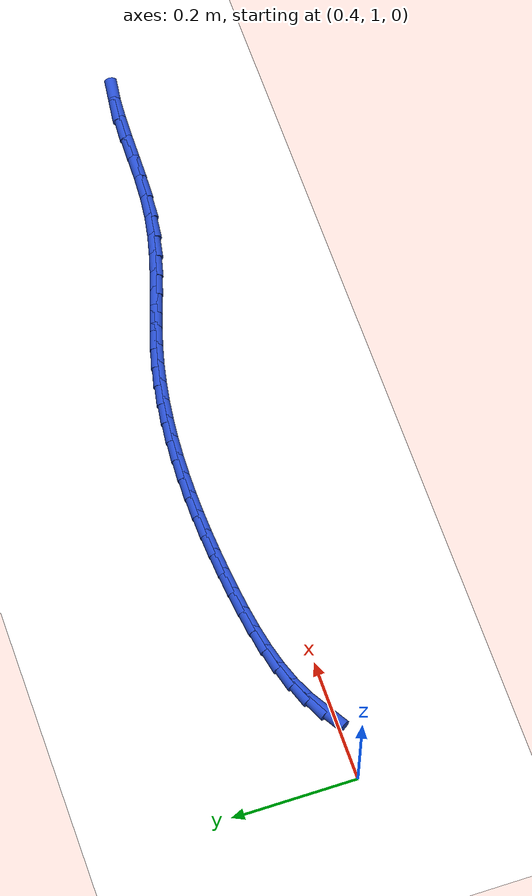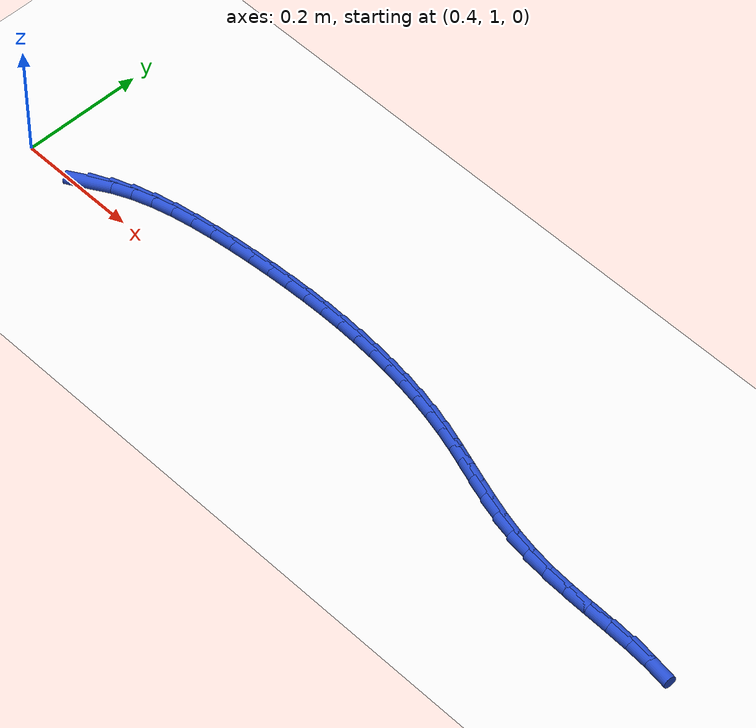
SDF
<sdf version="1.6">
 <world name="default">
  <model name="ground_plane">
   <static>1</static>
   <link name="link">
    <collision name="collision">
     <geometry><plane><normal>0 0 1</normal><size>100 100</size></plane></geometry>
     <surface><friction><ode><mu>100</mu><mu2>50</mu2></ode></friction></surface>
    </collision>
    <visual name="visual">
     <cast_shadows>0</cast_shadows>
     <geometry><plane><normal>0 0 1</normal><size>100 100</size></plane></geometry>
     <material>
      <script><uri>file://media/materials/scripts/gazebo.material</uri><name>Gazebo/WhiteGlow</name></script>
     </material>
    </visual>
   </link>
  </model>
  <model name="line">
   <link name="link_34">
    <pose>0.5169782519979379 1.0132975464089375 0.01 0 1.57 0.5370088300704926</pose>
    <collision name="collision">
     <geometry><cylinder><radius>0.01</radius><length>0.08</length></cylinder></geometry>
    </collision>
    <visual name="visual">
     <material>
      <script><name>Gazebo/Blue</name><uri>file://media/materials/scripts/gazebo.material</uri></script>
     </material>
     <geometry><cylinder><radius>0.01</radius><length>0.08</length></cylinder></geometry>
    </visual>
   </link>
   <link name="link_35">
    <pose>0.544877142777655 1.0299077353347679 0.01 0 1.57 0.42473841478895386</pose>
    <collision name="collision">
     <geometry><cylinder><radius>0.01</radius><length>0.08</length></cylinder></geometry>
    </collision>
    <visual name="visual">
     <material>
      <script><name>Gazebo/Blue</name><uri>file://media/materials/scripts/gazebo.material</uri></script>
     </material>
     <geometry><cylinder><radius>0.01</radius><length>0.08</length></cylinder></geometry>
    </visual>
   </link>
   <link name="link_36">
    <pose>0.5750825731842325 1.0435686856474273 0.01 0 1.57 0.3320224176890566</pose>
    <collision name="collision">
     <geometry><cylinder><radius>0.01</radius><length>0.08</length></cylinder></geometry>
    </collision>
    <visual name="visual">
     <material>
      <script><name>Gazebo/Blue</name><uri>file://media/materials/scripts/gazebo.material</uri></script>
     </material>
     <geometry><cylinder><radius>0.01</radius><length>0.08</length></cylinder></geometry>
    </visual>
   </link>
   <link name="link_37">
    <pose>0.6072027902052042 1.054643291014792 0.01 0 1.57 0.2572588622094976</pose>
    <collision name="collision">
     <geometry><cylinder><radius>0.01</radius><length>0.08</length></cylinder></geometry>
    </collision>
    <visual name="visual">
     <material>
      <script><name>Gazebo/Blue</name><uri>file://media/materials/scripts/gazebo.material</uri></script>
     </material>
     <geometry><cylinder><radius>0.01</radius><length>0.08</length></cylinder></geometry>
    </visual>
   </link>
   <link name="link_38">
    <pose>0.6408460408281034 1.0634944451047383 0.01 0 1.57 0.19838222313961734</pose>
    <collision name="collision">
     <geometry><cylinder><radius>0.01</radius><length>0.08</length></cylinder></geometry>
    </collision>
    <visual name="visual">
     <material>
      <script><name>Gazebo/Blue</name><uri>file://media/materials/scripts/gazebo.material</uri></script>
     </material>
     <geometry><cylinder><radius>0.01</radius><length>0.08</length></cylinder></geometry>
    </visual>
   </link>
   <link name="link_39">
    <pose>0.6756205720404633 1.070485041585141 0.01 0 1.57 0.1534532855851288</pose>
    <collision name="collision">
     <geometry><cylinder><radius>0.01</radius><length>0.08</length></cylinder></geometry>
    </collision>
    <visual name="visual">
     <material>
      <script><name>Gazebo/Blue</name><uri>file://media/materials/scripts/gazebo.material</uri></script>
     </material>
     <geometry><cylinder><radius>0.01</radius><length>0.08</length></cylinder></geometry>
    </visual>
   </link>
   <link name="link_40">
    <pose>0.7111346308298174 1.0759779741238764 0.01 0 1.57 0.12093346093062644</pose>
    <collision name="collision">
     <geometry><cylinder><radius>0.01</radius><length>0.08</length></cylinder></geometry>
    </collision>
    <visual name="visual">
     <material>
      <script><name>Gazebo/Blue</name><uri>file://media/materials/scripts/gazebo.material</uri></script>
     </material>
     <geometry><cylinder><radius>0.01</radius><length>0.08</length></cylinder></geometry>
    </visual>
   </link>
   <link name="link_41">
    <pose>0.7469964641836994 1.0803361363888209 0.01 0 1.57 0.09931896540505583</pose>
    <collision name="collision">
     <geometry><cylinder><radius>0.01</radius><length>0.08</length></cylinder></geometry>
    </collision>
    <visual name="visual">
     <material>
      <script><name>Gazebo/Blue</name><uri>file://media/materials/scripts/gazebo.material</uri></script>
     </material>
     <geometry><cylinder><radius>0.01</radius><length>0.08</length></cylinder></geometry>
    </visual>
   </link>
   <link name="link_42">
    <pose>0.7828283303095674 1.08390666820315 0.01 0 1.57 0.08130206565024588</pose>
    <collision name="collision">
     <geometry><cylinder><radius>0.01</radius><length>0.08</length></cylinder></geometry>
    </collision>
    <visual name="visual">
     <material>
      <script><name>Gazebo/Blue</name><uri>file://media/materials/scripts/gazebo.material</uri></script>
     </material>
     <geometry><cylinder><radius>0.01</radius><length>0.08</length></cylinder></geometry>
    </visual>
   </link>
   <link name="link_43">
    <pose>0.8184545195216446 1.0868095498385582 0.01 0 1.57 0.061640399173902065</pose>
    <collision name="collision">
     <geometry><cylinder><radius>0.01</radius><length>0.08</length></cylinder></geometry>
    </collision>
    <visual name="visual">
     <material>
      <script><name>Gazebo/Blue</name><uri>file://media/materials/scripts/gazebo.material</uri></script>
     </material>
     <geometry><cylinder><radius>0.01</radius><length>0.08</length></cylinder></geometry>
    </visual>
   </link>
   <link name="link_44">
    <pose>0.8538510408183688 1.0889941730953774 0.01 0 1.57 0.04014193194359412</pose>
    <collision name="collision">
     <geometry><cylinder><radius>0.01</radius><length>0.08</length></cylinder></geometry>
    </collision>
    <visual name="visual">
     <material>
      <script><name>Gazebo/Blue</name><uri>file://media/materials/scripts/gazebo.material</uri></script>
     </material>
     <geometry><cylinder><radius>0.01</radius><length>0.08</length></cylinder></geometry>
    </visual>
   </link>
   <link name="link_45">
    <pose>0.8889975922835498 1.0904057818640267 0.01 0 1.57 0.01673870169677716</pose>
    <collision name="collision">
     <geometry><cylinder><radius>0.01</radius><length>0.08</length></cylinder></geometry>
    </collision>
    <visual name="visual">
     <material>
      <script><name>Gazebo/Blue</name><uri>file://media/materials/scripts/gazebo.material</uri></script>
     </material>
     <geometry><cylinder><radius>0.01</radius><length>0.08</length></cylinder></geometry>
    </visual>
   </link>
   <link name="link_46">
    <pose>0.9238738720009979 1.0909896200349265 0.01 0 1.57 -0.008635969742446296</pose>
    <collision name="collision">
     <geometry><cylinder><radius>0.01</radius><length>0.08</length></cylinder></geometry>
    </collision>
    <visual name="visual">
     <material>
      <script><name>Gazebo/Blue</name><uri>file://media/materials/scripts/gazebo.material</uri></script>
     </material>
     <geometry><cylinder><radius>0.01</radius><length>0.08</length></cylinder></geometry>
    </visual>
   </link>
   <link name="link_47">
    <pose>0.9584595780545229 1.0906909314984958 0.01 0 1.57 -0.03604499321519855</pose>
    <collision name="collision">
     <geometry><cylinder><radius>0.01</radius><length>0.08</length></cylinder></geometry>
    </collision>
    <visual name="visual">
     <material>
      <script><name>Gazebo/Blue</name><uri>file://media/materials/scripts/gazebo.material</uri></script>
     </material>
     <geometry><cylinder><radius>0.01</radius><length>0.08</length></cylinder></geometry>
    </visual>
   </link>
   <link name="link_48">
    <pose>0.9927344085279345 1.089454960145154 0.01 0 1.57 -0.06554447155995513</pose>
    <collision name="collision">
     <geometry><cylinder><radius>0.01</radius><length>0.08</length></cylinder></geometry>
    </collision>
    <visual name="visual">
     <material>
      <script><name>Gazebo/Blue</name><uri>file://media/materials/scripts/gazebo.material</uri></script>
     </material>
     <geometry><cylinder><radius>0.01</radius><length>0.08</length></cylinder></geometry>
    </visual>
   </link>
   <link name="link_49">
    <pose>1.026678061505043 1.0872269498653206 0.01 0 1.57 -0.09718006973435889</pose>
    <collision name="collision">
     <geometry><cylinder><radius>0.01</radius><length>0.08</length></cylinder></geometry>
    </collision>
    <visual name="visual">
     <material>
      <script><name>Gazebo/Blue</name><uri>file://media/materials/scripts/gazebo.material</uri></script>
     </material>
     <geometry><cylinder><radius>0.01</radius><length>0.08</length></cylinder></geometry>
    </visual>
   </link>
   <link name="link_50">
    <pose>1.0602702350696582 1.0839521445494156 0.01 0 1.57 -0.13098280453710498</pose>
    <collision name="collision">
     <geometry><cylinder><radius>0.01</radius><length>0.08</length></cylinder></geometry>
    </collision>
    <visual name="visual">
     <material>
      <script><name>Gazebo/Blue</name><uri>file://media/materials/scripts/gazebo.material</uri></script>
     </material>
     <geometry><cylinder><radius>0.01</radius><length>0.08</length></cylinder></geometry>
    </visual>
   </link>
   <link name="link_51">
    <pose>1.0934906273055902 1.0795757880878578 0.01 0 1.57 -0.1669643235108259</pose>
    <collision name="collision">
     <geometry><cylinder><radius>0.01</radius><length>0.08</length></cylinder></geometry>
    </collision>
    <visual name="visual">
     <material>
      <script><name>Gazebo/Blue</name><uri>file://media/materials/scripts/gazebo.material</uri></script>
     </material>
     <geometry><cylinder><radius>0.01</radius><length>0.08</length></cylinder></geometry>
    </visual>
   </link>
   <link name="link_52">
    <pose>1.1263189362966486 1.074043124371067 0.01 0 1.57 -0.20511182511882553</pose>
    <collision name="collision">
     <geometry><cylinder><radius>0.01</radius><length>0.08</length></cylinder></geometry>
    </collision>
    <visual name="visual">
     <material>
      <script><name>Gazebo/Blue</name><uri>file://media/materials/scripts/gazebo.material</uri></script>
     </material>
     <geometry><cylinder><radius>0.01</radius><length>0.08</length></cylinder></geometry>
    </visual>
   </link>
   <link name="link_53">
    <pose>1.158734860126644 1.067299397289463 0.01 0 1.57 -0.2453828742518466</pose>
    <collision name="collision">
     <geometry><cylinder><radius>0.01</radius><length>0.08</length></cylinder></geometry>
    </collision>
    <visual name="visual">
     <material>
      <script><name>Gazebo/Blue</name><uri>file://media/materials/scripts/gazebo.material</uri></script>
     </material>
     <geometry><cylinder><radius>0.01</radius><length>0.08</length></cylinder></geometry>
    </visual>
   </link>
   <link name="link_54">
    <pose>1.1907180968793856 1.0592898507334652 0.01 0 1.57 -0.28503738867444456</pose>
    <collision name="collision">
     <geometry><cylinder><radius>0.01</radius><length>0.08</length></cylinder></geometry>
    </collision>
    <visual name="visual">
     <material>
      <script><name>Gazebo/Blue</name><uri>file://media/materials/scripts/gazebo.material</uri></script>
     </material>
     <geometry><cylinder><radius>0.01</radius><length>0.08</length></cylinder></geometry>
    </visual>
   </link>
   <link name="link_55">
    <pose>1.2222939919453863 1.0500376019087634 0.01 0 1.57 -0.3109531599609662</pose>
    <collision name="collision">
     <geometry><cylinder><radius>0.01</radius><length>0.08</length></cylinder></geometry>
    </collision>
    <visual name="visual">
     <material>
      <script><name>Gazebo/Blue</name><uri>file://media/materials/scripts/gazebo.material</uri></script>
     </material>
     <geometry><cylinder><radius>0.01</radius><length>0.08</length></cylinder></geometry>
    </visual>
   </link>
   <link name="link_56">
    <pose>1.2537082645462714 1.0399417209976332 0.01 0 1.57 -0.31905490137839754</pose>
    <collision name="collision">
     <geometry><cylinder><radius>0.01</radius><length>0.08</length></cylinder></geometry>
    </collision>
    <visual name="visual">
     <material>
      <script><name>Gazebo/Blue</name><uri>file://media/materials/scripts/gazebo.material</uri></script>
     </material>
     <geometry><cylinder><radius>0.01</radius><length>0.08</length></cylinder></geometry>
    </visual>
   </link>
   <link name="link_57">
    <pose>1.285273050244215 1.0295145830189363 0.01 0 1.57 -0.30962402222798535</pose>
    <collision name="collision">
     <geometry><cylinder><radius>0.01</radius><length>0.08</length></cylinder></geometry>
    </collision>
    <visual name="visual">
     <material>
      <script><name>Gazebo/Blue</name><uri>file://media/materials/scripts/gazebo.material</uri></script>
     </material>
     <geometry><cylinder><radius>0.01</radius><length>0.08</length></cylinder></geometry>
    </visual>
   </link>
   <link name="link_58">
    <pose>1.317300498163982 1.0192685861290254 0.01 0 1.57 -0.28337633328279926</pose>
    <collision name="collision">
     <geometry><cylinder><radius>0.01</radius><length>0.08</length></cylinder></geometry>
    </collision>
    <visual name="visual">
     <material>
      <script><name>Gazebo/Blue</name><uri>file://media/materials/scripts/gazebo.material</uri></script>
     </material>
     <geometry><cylinder><radius>0.01</radius><length>0.08</length></cylinder></geometry>
    </visual>
   </link>
   <link name="link_59">
    <pose>1.3501027574303408 1.0097161284842533 0.01 0 1.57 -0.24148231267782092</pose>
    <collision name="collision">
     <geometry><cylinder><radius>0.01</radius><length>0.08</length></cylinder></geometry>
    </collision>
    <visual name="visual">
     <material>
      <script><name>Gazebo/Blue</name><uri>file://media/materials/scripts/gazebo.material</uri></script>
     </material>
     <geometry><cylinder><radius>0.01</radius><length>0.08</length></cylinder></geometry>
    </visual>
   </link>
   <link name="link_60">
    <pose>1.3839919771680573 1.0013696082409727 0.01 0 1.57 -0.18566611535360206</pose>
    <collision name="collision">
     <geometry><cylinder><radius>0.01</radius><length>0.08</length></cylinder></geometry>
    </collision>
    <visual name="visual">
     <material>
      <script><name>Gazebo/Blue</name><uri>file://media/materials/scripts/gazebo.material</uri></script>
     </material>
     <geometry><cylinder><radius>0.01</radius><length>0.08</length></cylinder></geometry>
    </visual>
   </link>
   <link name="link_61">
    <pose>1.4192803065018986 0.9947414235555366 0.01 0 1.57 -0.11909433044103475</pose>
    <collision name="collision">
     <geometry><cylinder><radius>0.01</radius><length>0.08</length></cylinder></geometry>
    </collision>
    <visual name="visual">
     <material>
      <script><name>Gazebo/Blue</name><uri>file://media/materials/scripts/gazebo.material</uri></script>
     </material>
     <geometry><cylinder><radius>0.01</radius><length>0.08</length></cylinder></geometry>
    </visual>
   </link>
   <link name="link_62">
    <pose>1.4562580005757197 0.9903166505011818 0.01 0 1.57 -0.06181168499794157</pose>
    <collision name="collision">
     <geometry><cylinder><radius>0.01</radius><length>0.08</length></cylinder></geometry>
    </collision>
    <visual name="visual">
     <material>
      <script><name>Gazebo/Blue</name><uri>file://media/materials/scripts/gazebo.material</uri></script>
     </material>
     <geometry><cylinder><radius>0.01</radius><length>0.08</length></cylinder></geometry>
    </visual>
   </link>
   <link name="link_63">
    <pose>1.494700125610406 0.9879374471440926 0.01 0 1.57 -0.02916850797971341</pose>
    <collision name="collision">
     <geometry><cylinder><radius>0.01</radius><length>0.08</length></cylinder></geometry>
    </collision>
    <visual name="visual">
     <material>
      <script><name>Gazebo/Blue</name><uri>file://media/materials/scripts/gazebo.material</uri></script>
     </material>
     <geometry><cylinder><radius>0.01</radius><length>0.08</length></cylinder></geometry>
    </visual>
   </link>
   <link name="link_64">
    <pose>1.5338600152488837 0.9867948875416966 0.01 0 1.57 -0.01901686552982407</pose>
    <collision name="collision">
     <geometry><cylinder><radius>0.01</radius><length>0.08</length></cylinder></geometry>
    </collision>
    <visual name="visual">
     <material>
      <script><name>Gazebo/Blue</name><uri>file://media/materials/scripts/gazebo.material</uri></script>
     </material>
     <geometry><cylinder><radius>0.01</radius><length>0.08</length></cylinder></geometry>
    </visual>
   </link>
   <link name="link_65">
    <pose>1.5729678003568188 0.986051090386409 0.01 0 1.57 -0.030887155672375065</pose>
    <collision name="collision">
     <geometry><cylinder><radius>0.01</radius><length>0.08</length></cylinder></geometry>
    </collision>
    <visual name="visual">
     <material>
      <script><name>Gazebo/Blue</name><uri>file://media/materials/scripts/gazebo.material</uri></script>
     </material>
     <geometry><cylinder><radius>0.01</radius><length>0.08</length></cylinder></geometry>
    </visual>
   </link>
   <link name="link_66">
    <pose>1.6112536117998753 0.984868174370643 0.01 0 1.57 -0.06693854797012111</pose>
    <collision name="collision">
     <geometry><cylinder><radius>0.01</radius><length>0.08</length></cylinder></geometry>
    </collision>
    <visual name="visual">
     <material>
      <script><name>Gazebo/Blue</name><uri>file://media/materials/scripts/gazebo.material</uri></script>
     </material>
     <geometry><cylinder><radius>0.01</radius><length>0.08</length></cylinder></geometry>
    </visual>
   </link>
   <link name="link_67">
    <pose>1.647947580443717 0.9824082581868127 0.01 0 1.57 -0.13247035348886443</pose>
    <collision name="collision">
     <geometry><cylinder><radius>0.01</radius><length>0.08</length></cylinder></geometry>
    </collision>
    <visual name="visual">
     <material>
      <script><name>Gazebo/Blue</name><uri>file://media/materials/scripts/gazebo.material</uri></script>
     </material>
     <geometry><cylinder><radius>0.01</radius><length>0.08</length></cylinder></geometry>
    </visual>
   </link>
  </model>
 </world>
</sdf>
